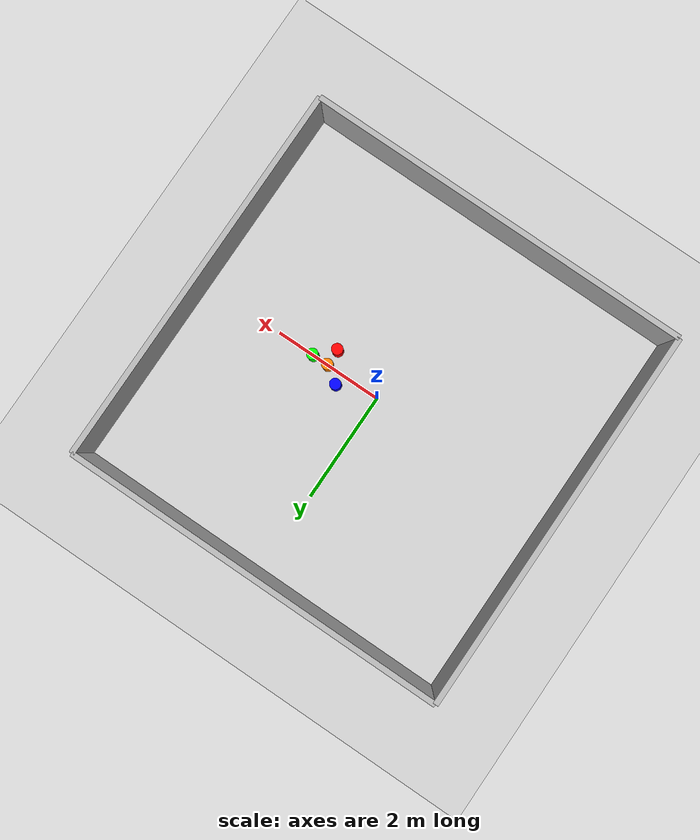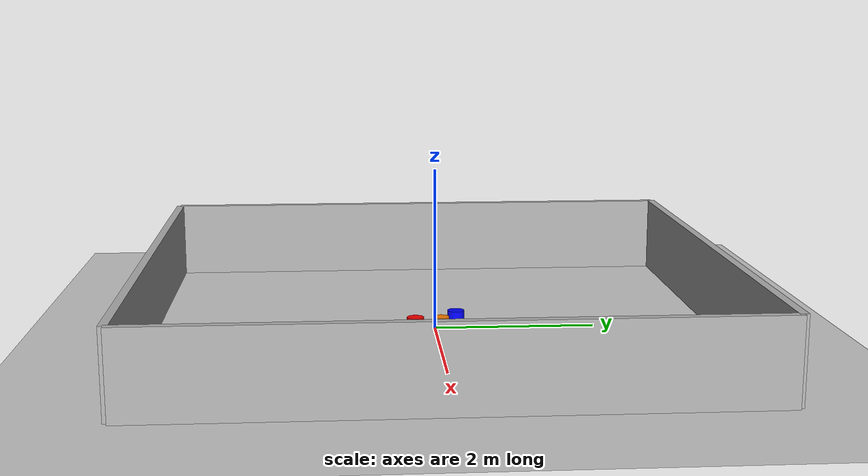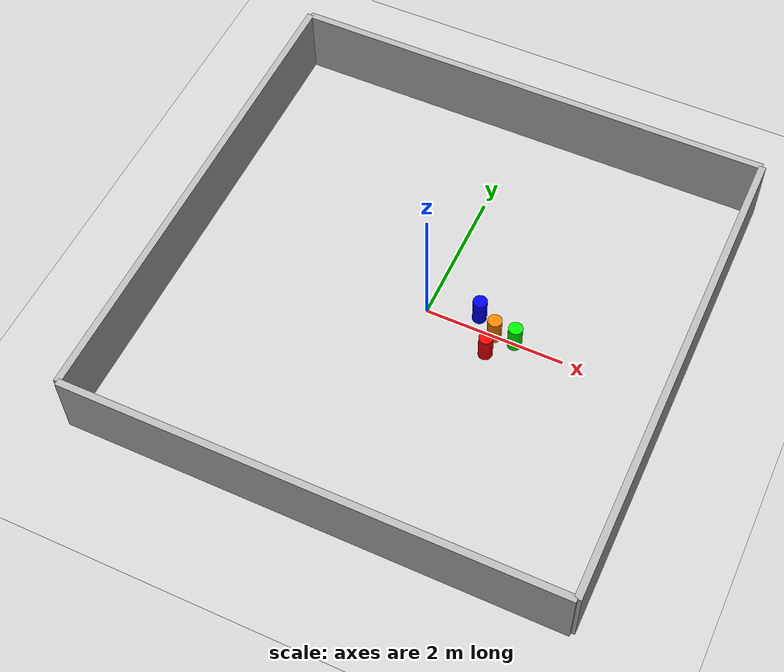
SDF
<?xml version="1.0" ?>
<sdf version="1.6">
  <world name="boxed_arena_large">

    <!-- Ground -->
    <include>
      <uri>model://ground_plane</uri>
    </include>

    <!-- Sun -->
    <include>
      <uri>model://sun</uri>
    </include>

    <!-- Arena Walls (≈ 7x7 meters) -->
    <!-- Front Wall -->
    <model name="wall_front">
      <static>true</static>
      <pose>0 3.5 0.5 0 0 0</pose>
      <link name="link">
        <visual name="visual">
          <geometry><box><size>7 0.1 1</size></box></geometry>
          <material>
            <ambient>0.4 0.4 0.4 1</ambient>
            <diffuse>0.7 0.7 0.7 1</diffuse>
          </material>
        </visual>
        <collision name="collision">
          <geometry><box><size>7 0.1 1</size></box></geometry>
        </collision>
      </link>
    </model>

    <!-- Back Wall -->
    <model name="wall_back">
      <static>true</static>
      <pose>0 -3.5 0.5 0 0 0</pose>
      <link name="link">
        <visual name="visual">
          <geometry><box><size>7 0.1 1</size></box></geometry>
          <material>
            <ambient>0.4 0.4 0.4 1</ambient>
            <diffuse>0.7 0.7 0.7 1</diffuse>
          </material>
        </visual>
        <collision name="collision">
          <geometry><box><size>7 0.1 1</size></box></geometry>
        </collision>
      </link>
    </model>

    <!-- Left Wall -->
    <model name="wall_left">
      <static>true</static>
      <pose>-3.5 0 0.5 0 0 0</pose>
      <link name="link">
        <visual name="visual">
          <geometry><box><size>0.1 7 1</size></box></geometry>
          <material>
            <ambient>0.4 0.4 0.4 1</ambient>
            <diffuse>0.7 0.7 0.7 1</diffuse>
          </material>
        </visual>
        <collision name="collision">
          <geometry><box><size>0.1 7 1</size></box></geometry>
        </collision>
      </link>
    </model>

    <!-- Right Wall -->
    <model name="wall_right">
      <static>true</static>
      <pose>3.5 0 0.5 0 0 0</pose>
      <link name="link">
        <visual name="visual">
          <geometry><box><size>0.1 7 1</size></box></geometry>
          <material>
            <ambient>0.4 0.4 0.4 1</ambient>
            <diffuse>0.7 0.7 0.7 1</diffuse>
          </material>
        </visual>
        <collision name="collision">
          <geometry><box><size>0.1 7 1</size></box></geometry>
        </collision>
      </link>
    </model>

    <!--  Orange Cone -->
    <model name="orange_cone">
      <static>true</static>
      <pose>1 0 0.2 0 0 0</pose>
      <link name="cone_link">
        <visual name="visual">
          <geometry>
            <cylinder>
              <radius>0.1</radius>
              <length>0.4</length>
            </cylinder>
          </geometry>
          <material>
            <ambient>1.0 0.5 0.0 1</ambient>
            <diffuse>1.0 0.5 0.0 1</diffuse>
          </material>
        </visual>
        <collision name="collision">
          <geometry>
            <cylinder>
              <radius>0.1</radius>
              <length>0.4</length>
            </cylinder>
          </geometry>
        </collision>
      </link>
    </model>

    <!--  Green Cone -->
    <model name="green_cone">
      <static>true</static>
      <pose>1.3 0 0.2 0 0 0</pose>
      <link name="cone_link">
        <visual name="visual">
          <geometry>
            <cylinder>
              <radius>0.1</radius>
              <length>0.4</length>
            </cylinder>
          </geometry>
          <material>
            <ambient>0.0 1.0 0.0 1</ambient>
            <diffuse>0.0 1.0 0.0 1</diffuse>
          </material>
        </visual>
        <collision name="collision">
          <geometry>
            <cylinder>
              <radius>0.1</radius>
              <length>0.4</length>
            </cylinder>
          </geometry>
        </collision>
      </link>
    </model>

    <!--  Blue Cone -->
    <model name="blue_cone">
      <static>true</static>
      <pose>0.7 0.2 0.2 0 0 0</pose>
      <link name="cone_link">
        <visual name="visual">
          <geometry>
            <cylinder>
              <radius>0.1</radius>
              <length>0.4</length>
            </cylinder>
          </geometry>
          <material>
            <ambient>0.0 0.0 1.0 1</ambient>
            <diffuse>0.0 0.0 1.0 1</diffuse>
          </material>
        </visual>
        <collision name="collision">
          <geometry>
            <cylinder>
              <radius>0.1</radius>
              <length>0.4</length>
            </cylinder>
          </geometry>
        </collision>
      </link>
    </model>

    <!--  Red Cone -->
    <model name="red_cone">
      <static>true</static>
      <pose>1 -0.3 0.2 0 0 0</pose>
      <link name="cone_link">
        <visual name="visual">
          <geometry>
            <cylinder>
              <radius>0.1</radius>
              <length>0.4</length>
            </cylinder>
          </geometry>
          <material>
            <ambient>1.0 0.0 0.0 1</ambient>
            <diffuse>1.0 0.0 0.0 1</diffuse>
          </material>
        </visual>
        <collision name="collision">
          <geometry>
            <cylinder>
              <radius>0.1</radius>
              <length>0.4</length>
            </cylinder>
          </geometry>
        </collision>
      </link>
    </model>

  </world>
</sdf>
